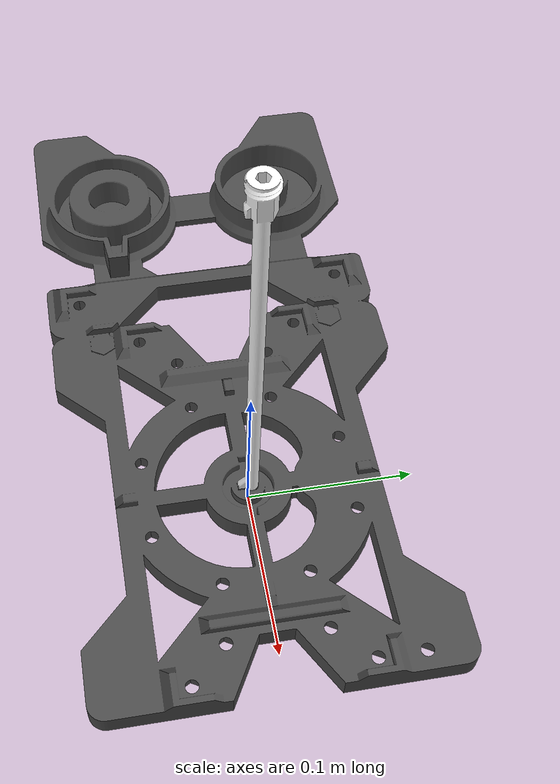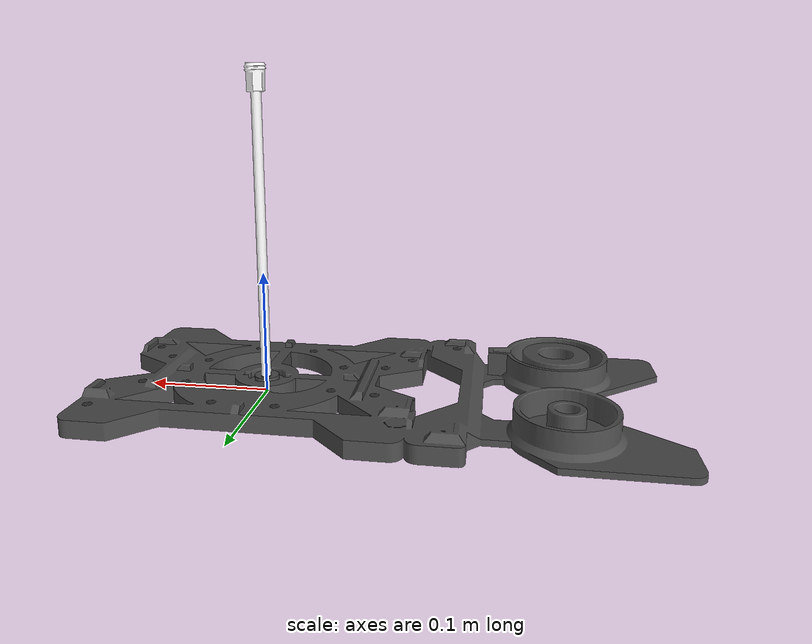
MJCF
<mujoco model="G4_Cylinder_Small">

  <asset>
    <material name="object_material" rgba="1 1 1 1" shininess="0.3"/>

    <mesh name="g1234567_base_plate_visual" file="g1234567_base_plate_visual.stl" scale="1 1 1"/>
    <mesh name="g_plate_collision_part1" file="g_plate_collision_part1.stl" scale="1 1 1"/>
    <mesh name="g_plate_collision_part2" file="g_plate_collision_part2.stl" scale="1 1 1"/>
    <mesh name="g_plate_collision_part3" file="g_plate_collision_part3.stl" scale="1 1 1"/>
    <mesh name="g7_rim_part_0" file="g7_rim/part_0.obj" scale="1 1 1"/>
    <mesh name="g7_rim_part_1" file="g7_rim/part_1.obj" scale="1 1 1"/>
    <mesh name="g7_rim_part_2" file="g7_rim/part_2.obj" scale="1 1 1"/>
    <mesh name="g7_rim_part_3" file="g7_rim/part_3.obj" scale="1 1 1"/>
    <mesh name="g7_rim_part_4" file="g7_rim/part_4.obj" scale="1 1 1"/>
    <mesh name="g7_rim_part_5" file="g7_rim/part_5.obj" scale="1 1 1"/>
    <mesh name="g7_rim_part_6" file="g7_rim/part_6.obj" scale="1 1 1"/>
    <mesh name="g7_rim_part_7" file="g7_rim/part_7.obj" scale="1 1 1"/>
    <mesh name="g7_rim_part_8" file="g7_rim/part_8.obj" scale="1 1 1"/>
    <mesh name="g7_rim_part_9" file="g7_rim/part_9.obj" scale="1 1 1"/>
    <mesh name="g7_rim_part_10" file="g7_rim/part_10.obj" scale="1 1 1"/>
    <mesh name="g7_rim_part_11" file="g7_rim/part_11.obj" scale="1 1 1"/>
    <mesh name="g7_rim_part_12" file="g7_rim/part_12.obj" scale="1 1 1"/>
    <mesh name="g7_rim_part_13" file="g7_rim/part_13.obj" scale="1 1 1"/>
    <mesh name="g7_rim_part_14" file="g7_rim/part_14.obj" scale="1 1 1"/>
    <mesh name="g7_rim_part_15" file="g7_rim/part_15.obj" scale="1 1 1"/>
    <mesh name="g7_rim_part_16" file="g7_rim/part_16.obj" scale="1 1 1"/>
    <mesh name="g7_rim_part_17" file="g7_rim/part_17.obj" scale="1 1 1"/>
    <mesh name="g7_rim_part_18" file="g7_rim/part_18.obj" scale="1 1 1"/>
    <mesh name="g7_rim_part_19" file="g7_rim/part_19.obj" scale="1 1 1"/>
    <mesh name="g7_rim_part_20" file="g7_rim/part_20.obj" scale="1 1 1"/>
    <mesh name="g7_rim_part_21" file="g7_rim/part_21.obj" scale="1 1 1"/>
    <mesh name="g7_rim_part_22" file="g7_rim/part_22.obj" scale="1 1 1"/>
    <mesh name="g7_rim_part_23" file="g7_rim/part_23.obj" scale="1 1 1"/>
    <mesh name="g7_rim_part_24" file="g7_rim/part_24.obj" scale="1 1 1"/>
    <mesh name="g7_rim_part_25" file="g7_rim/part_25.obj" scale="1 1 1"/>
    <mesh name="g7_rim_part_26" file="g7_rim/part_26.obj" scale="1 1 1"/>
    <mesh name="g7_rim_part_27" file="g7_rim/part_27.obj" scale="1 1 1"/>
    <mesh name="g7_rim_part_28" file="g7_rim/part_28.obj" scale="1 1 1"/>

    <mesh name="g7_stick_visual" file="g7_stick_visual.stl" scale="1 1 1"/>
    <mesh name="g7_stick_collision_part1" file="g7_stick_collision_part1.stl" scale="1 1 1"/>
    <mesh name="g7_stick_collision_part2" file="g7_stick_collision_part2.stl" scale="1 1 1"/>
    <mesh name="g7_stick_collision_part3" file="g7_stick_collision_part3.stl" scale="1 1 1"/>

  </asset>

  <default>
    <default class="visual">
      <geom contype="0" conaffinity="0" group="2"/>
    </default>
    <default class="collision">
      <geom group="3"/>
    </default>
  </default>

  <worldbody>
    <body name="base_plate" pos="0 0 0">
      <geom name="g1234567_base_plate_visual" type="mesh" mesh="g1234567_base_plate_visual" rgba="0.3 0.3 0.3 1" mass="0" class="visual"/>
      <geom name="g_plate_collision_part1" type="mesh" mesh="g_plate_collision_part1" class="collision" density="248"/>
      <geom name="g_plate_collision_part2" type="mesh" mesh="g_plate_collision_part2" class="collision" density="248"/>
      <geom name="g_plate_collision_part3" type="mesh" mesh="g_plate_collision_part3" class="collision" density="248"/>
      <geom name="g7_rim_part_0" type="mesh" mesh="g7_rim_part_0" class="collision" density="248"/>
      <geom name="g7_rim_part_1" type="mesh" mesh="g7_rim_part_1" class="collision" density="248"/>
      <geom name="g7_rim_part_2" type="mesh" mesh="g7_rim_part_2" class="collision" density="248"/>
      <geom name="g7_rim_part_3" type="mesh" mesh="g7_rim_part_3" class="collision" density="248"/>
      <geom name="g7_rim_part_4" type="mesh" mesh="g7_rim_part_4" class="collision" density="248"/>
      <geom name="g7_rim_part_5" type="mesh" mesh="g7_rim_part_5" class="collision" density="248"/>
      <geom name="g7_rim_part_6" type="mesh" mesh="g7_rim_part_6" class="collision" density="248"/>
      <geom name="g7_rim_part_7" type="mesh" mesh="g7_rim_part_7" class="collision" density="248"/>
      <geom name="g7_rim_part_8" type="mesh" mesh="g7_rim_part_8" class="collision" density="248"/>
      <geom name="g7_rim_part_9" type="mesh" mesh="g7_rim_part_9" class="collision" density="248"/>
      <geom name="g7_rim_part_10" type="mesh" mesh="g7_rim_part_10" class="collision" density="248"/>
      <geom name="g7_rim_part_11" type="mesh" mesh="g7_rim_part_11" class="collision" density="248"/>
      <geom name="g7_rim_part_12" type="mesh" mesh="g7_rim_part_12" class="collision" density="248"/>
      <geom name="g7_rim_part_13" type="mesh" mesh="g7_rim_part_13" class="collision" density="248"/>
      <geom name="g7_rim_part_14" type="mesh" mesh="g7_rim_part_14" class="collision" density="248"/>
      <geom name="g7_rim_part_15" type="mesh" mesh="g7_rim_part_15" class="collision" density="248"/>
      <geom name="g7_rim_part_16" type="mesh" mesh="g7_rim_part_16" class="collision" density="248"/>
      <geom name="g7_rim_part_17" type="mesh" mesh="g7_rim_part_17" class="collision" density="248"/>
      <geom name="g7_rim_part_18" type="mesh" mesh="g7_rim_part_18" class="collision" density="248"/>
      <geom name="g7_rim_part_19" type="mesh" mesh="g7_rim_part_19" class="collision" density="248"/>
      <geom name="g7_rim_part_20" type="mesh" mesh="g7_rim_part_20" class="collision" density="248"/>
      <geom name="g7_rim_part_21" type="mesh" mesh="g7_rim_part_21" class="collision" density="248"/>
      <geom name="g7_rim_part_22" type="mesh" mesh="g7_rim_part_22" class="collision" density="248"/>
      <geom name="g7_rim_part_23" type="mesh" mesh="g7_rim_part_23" class="collision" density="248"/>
      <geom name="g7_rim_part_24" type="mesh" mesh="g7_rim_part_24" class="collision" density="248"/>
      <geom name="g7_rim_part_25" type="mesh" mesh="g7_rim_part_25" class="collision" density="248"/>
      <geom name="g7_rim_part_26" type="mesh" mesh="g7_rim_part_26" class="collision" density="248"/>
      <geom name="g7_rim_part_27" type="mesh" mesh="g7_rim_part_27" class="collision" density="248"/>
      <geom name="g7_rim_part_28" type="mesh" mesh="g7_rim_part_28" class="collision" density="248"/>

    </body>

    <body name="g7_stick" pos="0 0 0">
      <joint name="g7_free_joint" type="free"/>
      <geom name="g7_stick_visual" type="mesh" mesh="g7_stick_visual" material="object_material" mass="0" class="visual"/>
      <geom name="g7_stick_collision_part1" type="mesh" mesh="g7_stick_collision_part1" class="collision" density="248"/>
      <geom name="g7_stick_collision_part2" type="mesh" mesh="g7_stick_collision_part2" class="collision" density="248"/>
      <geom name="g7_stick_collision_part3" type="mesh" mesh="g7_stick_collision_part3" class="collision" density="248"/>

    </body>

  </worldbody>
</mujoco>
